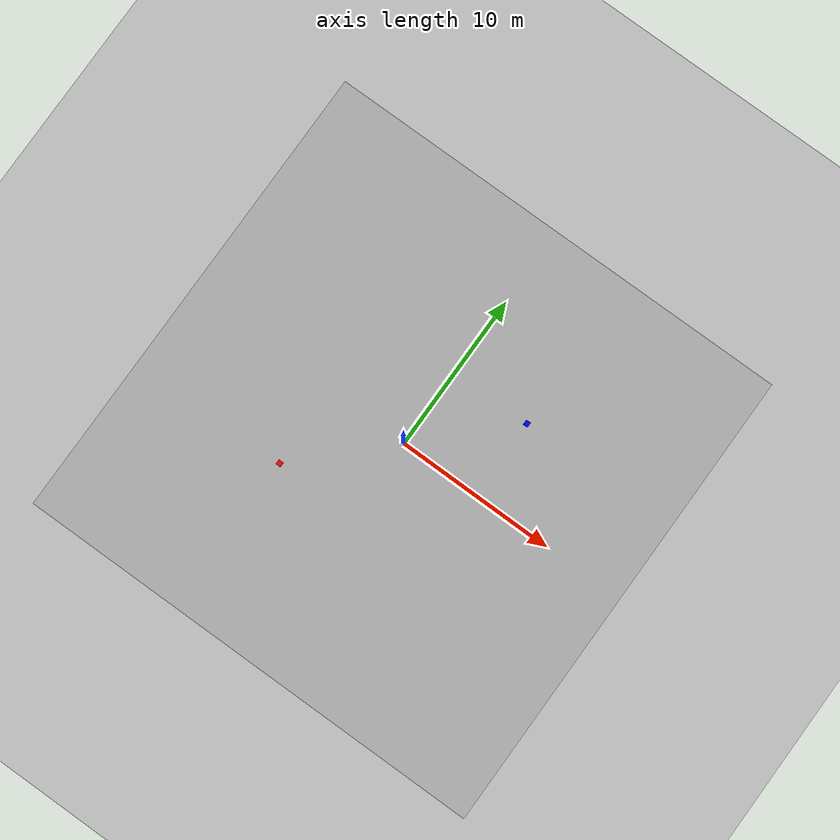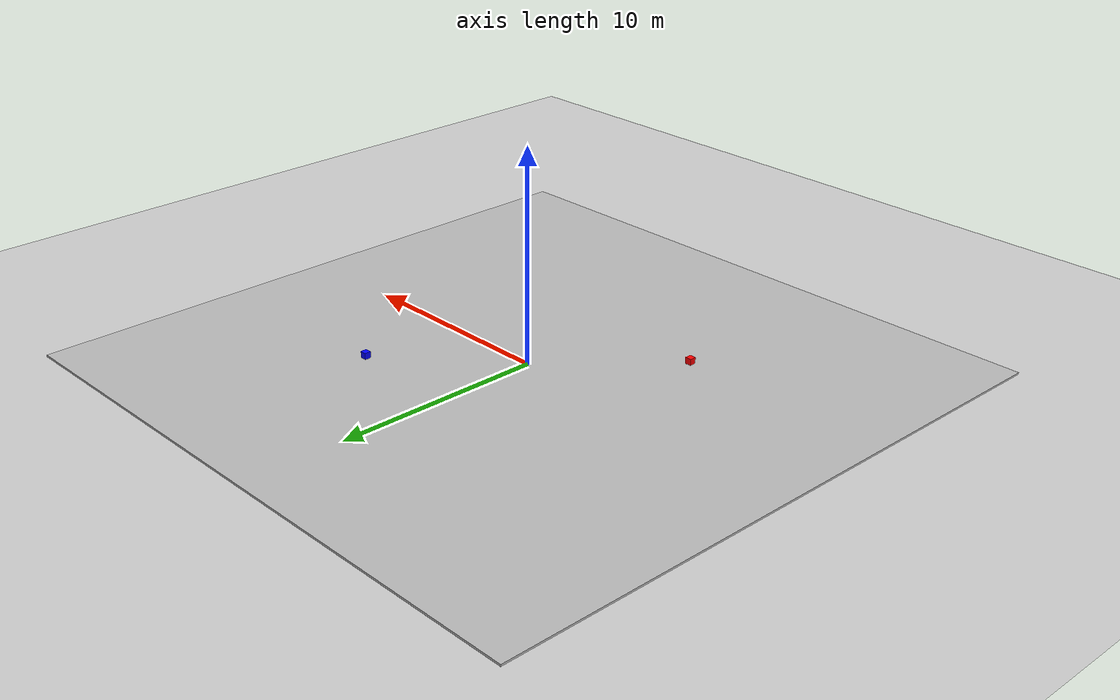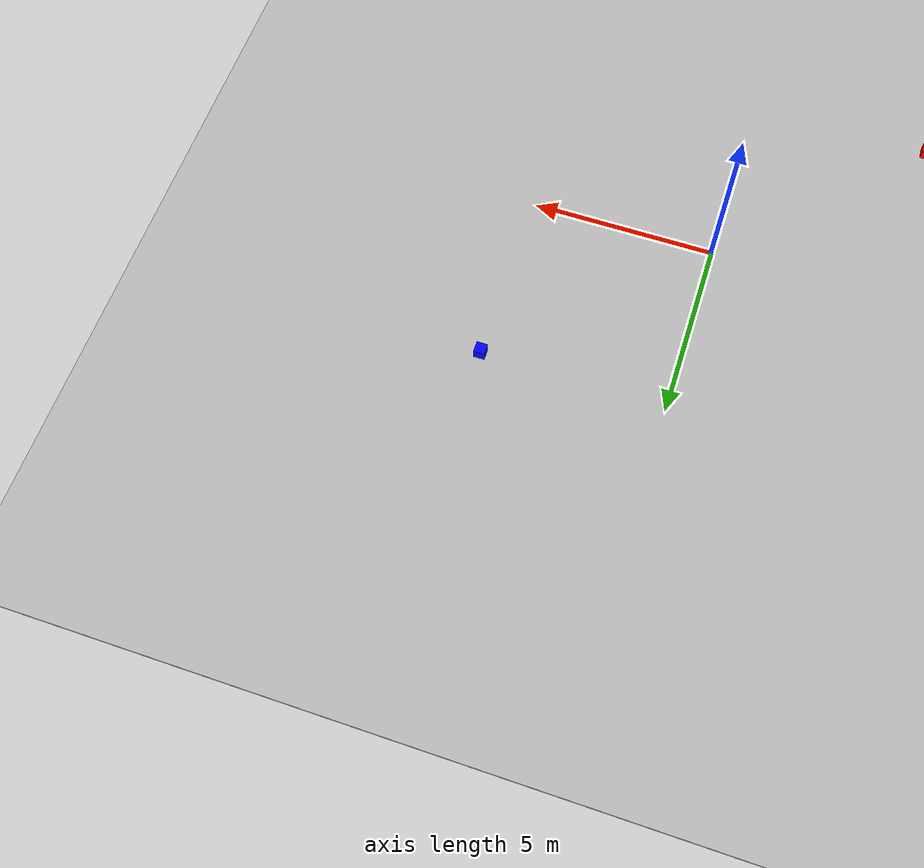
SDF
<sdf version="1.7">
 <world name="default">
  <light name="sun" type="directional">
   <cast_shadows>0</cast_shadows>
   <pose>0 0 10 0 -0 0</pose>
   <diffuse>0.8 0.8 0.8 1</diffuse>
   <specular>0.2 0.2 0.2 1</specular>
   <attenuation>
    <range>1000</range>
    <constant>0.9</constant>
    <linear>0.01</linear>
    <quadratic>0.001</quadratic>
   </attenuation>
   <direction>-0.5 0.1 -0.9</direction>
   <spot><inner_angle>0</inner_angle><outer_angle>0</outer_angle><falloff>0</falloff></spot>
  </light>
  <model name="ground_plane">
   <static>1</static>
   <link name="link">
    <collision name="collision">
     <geometry><plane><normal>0 0 1</normal><size>100 100</size></plane></geometry>
     <surface><friction><ode><mu>100</mu><mu2>50</mu2></ode></friction></surface>
    </collision>
    <visual name="visual">
     <cast_shadows>0</cast_shadows>
     <geometry><plane><normal>0 0 1</normal><size>100 100</size></plane></geometry>
     <material>
      <script><uri>file://media/materials/scripts/gazebo.material</uri><name>Gazebo/Grey</name></script>
     </material>
    </visual>
   </link>
  </model>
  <include><uri>model://field_plane</uri></include>
  <model name="EmptyRoom">
   <pose>-10 15 0 0 -0 0</pose>
   <link name="Wall_1">
    <collision name="Wall_1_Collision">
     <geometry><box><size>30 0.15 1</size></box></geometry>
     <pose>15 0 0.5 0 -0 0</pose>
    </collision>
    <pose>-4.925 0 0 0 -0 -1.5708</pose>
   </link>
   <link name="Wall_2">
    <collision name="Wall_2_Collision">
     <geometry><box><size>30 0.15 1</size></box></geometry>
     <pose>0 0 0.5 0 -0 0</pose>
    </collision>
   </link>
   <link name="Wall_3">
    <collision name="Wall_3_Collision">
     <geometry><box><size>30 0.15 1</size></box></geometry>
     <pose>0 -15 0.5 0 -0 0</pose>
    </collision>
    <pose>0 -15 0 0 -0 1.5708</pose>
   </link>
   <link name="Wall_4">
    <collision name="Wall_4_Collision">
     <geometry><box><size>30 0.15 1</size></box></geometry>
     <pose>0 15 0.5 0 -0 0</pose>
    </collision>
    <pose>-0 15 0 0 -0 3.14159</pose>
   </link>
   <static>1</static>
  </model>
  <model name="DynamicObstacle1">
   <pose>-5 -5 0.2 0 0 0</pose>
   <include><uri>model://dynamic_obstacle1</uri></include>
  </model>
  <model name="DynamicObstacle2">
   <pose>5 5 0.2 0 0 0</pose>
   <include><uri>model://dynamic_obstacle2</uri></include>
  </model>
  <physics name="default_physics" default="0" type="ode">
   <ode>
    <solver>
     <type>quick</type>
     <iters>10</iters>
     <sor>1.3</sor>
     <use_dynamic_moi_rescaling>0</use_dynamic_moi_rescaling>
    </solver>
    <constraints>
     <cfm>0</cfm>
     <erp>0.2</erp>
     <contact_max_correcting_vel>100</contact_max_correcting_vel>
     <contact_surface_layer>0.001</contact_surface_layer>
    </constraints>
   </ode>
   <max_step_size>0.004</max_step_size>
   <real_time_factor>1</real_time_factor>
   <real_time_update_rate>250</real_time_update_rate>
   <gravity>0 0 -9.8066</gravity>
   <magnetic_field>6.0e-6 2.3e-5 -4.2e-5</magnetic_field>
  </physics>
  <gravity>0 0 -9.8</gravity>
  <magnetic_field>6e-06 2.3e-05 -4.2e-05</magnetic_field>
  <atmosphere type="adiabatic"/>
  <scene><ambient>0.4 0.4 0.4 1</ambient><background>0.7 0.7 0.7 1</background><shadows>0</shadows></scene>
  <audio><device>default</device></audio>
  <spherical_coordinates>
   <surface_model>EARTH_WGS84</surface_model>
   <latitude_deg>0</latitude_deg>
   <longitude_deg>0</longitude_deg>
   <elevation>0</elevation>
   <heading_deg>0</heading_deg>
  </spherical_coordinates>
 </world>
</sdf>

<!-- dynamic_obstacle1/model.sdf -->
<sdf version="1.6">
    <model name="DynamicObstacle1">
      <pose>0 0 0.15 0 0 0</pose>
      <link name="link">
        <gravity>1</gravity>
        <inertial>
          <inertia>
            <ixx>0.17</ixx>
            <ixy>0.00</ixy>
            <ixz>0.00</ixz>
            <iyy>0.17</iyy>
            <iyz>0.00</iyz>
            <izz>0.17</izz>
          </inertia>
          <mass>100</mass>
        </inertial>
        <kinematic>false</kinematic>
        <collision name="collision">
          <max_contacts>0</max_contacts>
          <geometry>
            <box>
              <size>0.3 0.3 0.3</size>
            </box>
          </geometry>
          <surface>
            <friction>
              <ode>
                <mu>0.0</mu>
                <mu2>0.0</mu2>
              </ode>
            </friction>
            <bounce>
              <restitution_coefficient>0.0</restitution_coefficient>
              <threshold>0.0</threshold>
            </bounce>
            <contact>
              <ode>
                <kp>2000000000</kp>
                <kd>1</kd>
                <max_vel>2</max_vel>
                <min_depth>0.00</min_depth>
              </ode>
            </contact>
          </surface>
        </collision>
        <visual name="visual">
          <geometry>
            <box>
              <size>0.3 0.3 0.3</size>
            </box>
          </geometry>
          <material>
            <ambient>1 0 0 1</ambient>
            <diffuse>1 0 0 1</diffuse>
            <specular>0.1 0.1 0.1 1</specular>
          </material>
        </visual>
      </link>
      <plugin name="rgv_movement_plugin" filename="libgazebo_rgv_movement_plugin.so">
        <link>link</link>
        <initial_velocity>0 1 0</initial_velocity>
        <velocity_factor>1</velocity_factor>
        <update_period>5</update_period>
        <move_duration>10</move_duration>
        <stop_duration>5</stop_duration> <!-- Since the update_period is 5 seconds. Make the stop duration 5 seconds shorter than you want. -->
        <min_z>-5</min_z>
        <max_z>0</max_z>
      </plugin>
    </model>
</sdf>

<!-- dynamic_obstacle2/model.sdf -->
<sdf version="1.6">
    <model name="DynamicObstacle2">
      <pose>0 0 0.15 0 0 0</pose>
      <link name="link">
        <gravity>1</gravity>
        <inertial>
          <inertia>
            <ixx>0.17</ixx>
            <ixy>0.00</ixy>
            <ixz>0.00</ixz>
            <iyy>0.17</iyy>
            <iyz>0.00</iyz>
            <izz>0.17</izz>
          </inertia>
          <mass>100</mass>
        </inertial>
        <kinematic>false</kinematic>
        <collision name="collision">
          <max_contacts>0</max_contacts>
          <geometry>
            <box>
              <size>0.3 0.3 0.3</size>
            </box>
          </geometry>
          <surface>
            <friction>
              <ode>
                <mu>0.0</mu>
                <mu2>0.0</mu2>
              </ode>
            </friction>
            <bounce>
              <restitution_coefficient>0.0</restitution_coefficient>
              <threshold>0.0</threshold>
            </bounce>
            <contact>
              <ode>
                <kp>2000000000</kp>
                <kd>1</kd>
                <max_vel>2</max_vel>
                <min_depth>0.00</min_depth>
              </ode>
            </contact>
          </surface>
        </collision>
        <visual name="visual">
          <geometry>
            <box>
              <size>0.3 0.3 0.3</size>
            </box>
          </geometry>
          <material>
            <ambient>.6 .6 .1 1</ambient>
            <diffuse>0 0 1 1</diffuse>
            <specular>0 0 0 1</specular>
          </material>
        </visual>
      </link>
      <plugin name="rgv_movement_plugin" filename="libgazebo_rgv_movement_plugin.so">
        <link>link</link>
        <initial_velocity>0 1 0</initial_velocity>
        <velocity_factor>1</velocity_factor>
        <update_period>5</update_period>
        <move_duration>10</move_duration>
        <stop_duration>5</stop_duration> <!-- Since the update_period is 5 seconds. Make the stop duration 5 seconds shorter than you want. -->
        <min_z>-5</min_z>
        <max_z>0</max_z>
      </plugin>
    </model>
</sdf>

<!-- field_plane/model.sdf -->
<sdf version="1.4">
  <model name="field_plane">
    <static>true</static>
    <link name="link">
      <collision name="collision">
        <geometry>
          <box>
            <size>30 30 .1</size>
          </box>
        </geometry>
        <surface>
          <friction>
            <ode>
              <mu>0</mu>
              <mu2>0</mu2>
            </ode>
          </friction>
          <contact>
            <ode/>
          </contact>
          <bounce/>
        </surface>
      </collision>
      <visual name="visual">
        <cast_shadows>false</cast_shadows>
        <geometry>
          <box>
            <size>30 30 .1</size>
          </box>
        </geometry>
        <material>
          <script>
            <uri>model://field_plane/materials/scripts</uri>
            <uri>model://field_plane/materials/textures</uri>
            <name>vrc/field</name>
          </script>
        </material>
      </visual>
    </link>
  </model>
</sdf>
